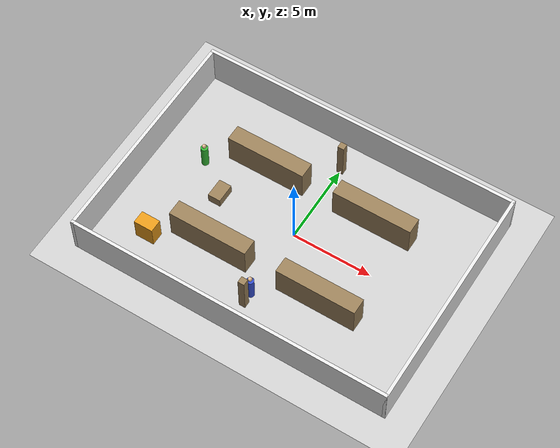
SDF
<?xml version="1.0"?>
<sdf version="1.6">
  <world name="warehouse">
    <include><uri>model://sun</uri></include>
    <include><uri>model://ground_plane</uri></include>
    <scene><ambient>0.6 0.6 0.6 1</ambient><background>0.7 0.75 0.8 1</background></scene>

    <plugin name="gazebo_ros_state" filename="libgazebo_ros_state.so">
      <ros><namespace>/gazebo</namespace></ros>
      <update_rate>50.0</update_rate>
    </plugin>

    <model name="walls">
      <static>true</static>
      <link name="link">
        <collision name="wall_px_c"><pose>10.0 0.0 1.250 0 0 0</pose><geometry><box><size>0.2 14.2 2.5</size></box></geometry></collision>
        <visual name="wall_px_v"><pose>10.0 0.0 1.250 0 0 0</pose><geometry><box><size>0.2 14.2 2.5</size></box></geometry>
          <material><ambient>0.85 0.85 0.85 1</ambient><diffuse>0.9 0.9 0.9 1</diffuse></material></visual>
        <collision name="wall_nx_c"><pose>-10.0 0.0 1.250 0 0 0</pose><geometry><box><size>0.2 14.2 2.5</size></box></geometry></collision>
        <visual name="wall_nx_v"><pose>-10.0 0.0 1.250 0 0 0</pose><geometry><box><size>0.2 14.2 2.5</size></box></geometry>
          <material><ambient>0.85 0.85 0.85 1</ambient><diffuse>0.9 0.9 0.9 1</diffuse></material></visual>
        <collision name="wall_py_c"><pose>0.0 7.0 1.250 0 0 0</pose><geometry><box><size>20.2 0.2 2.5</size></box></geometry></collision>
        <visual name="wall_py_v"><pose>0.0 7.0 1.250 0 0 0</pose><geometry><box><size>20.2 0.2 2.5</size></box></geometry>
          <material><ambient>0.85 0.85 0.85 1</ambient><diffuse>0.9 0.9 0.9 1</diffuse></material></visual>
        <collision name="wall_ny_c"><pose>0.0 -7.0 1.250 0 0 0</pose><geometry><box><size>20.2 0.2 2.5</size></box></geometry></collision>
        <visual name="wall_ny_v"><pose>0.0 -7.0 1.250 0 0 0</pose><geometry><box><size>20.2 0.2 2.5</size></box></geometry>
          <material><ambient>0.85 0.85 0.85 1</ambient><diffuse>0.9 0.9 0.9 1</diffuse></material></visual>
      </link>
    </model>
    <model name="shelf_nw">
      <static>true</static>
      <pose>-3.5 3.0 1.000 0 0 0</pose>
      <link name="link">
        <collision name="c"><geometry><box><size>5.0 1.0 2.0</size></box></geometry></collision>
        <visual name="v">
          <geometry><box><size>5.0 1.0 2.0</size></box></geometry>
          <material><ambient>0.5 0.4 0.3 1</ambient><diffuse>0.6 0.5 0.35 1</diffuse></material>
        </visual>
      </link>
    </model>
    <model name="shelf_ne">
      <static>true</static>
      <pose>3.5 3.0 1.000 0 0 0</pose>
      <link name="link">
        <collision name="c"><geometry><box><size>5.0 1.0 2.0</size></box></geometry></collision>
        <visual name="v">
          <geometry><box><size>5.0 1.0 2.0</size></box></geometry>
          <material><ambient>0.5 0.4 0.3 1</ambient><diffuse>0.6 0.5 0.35 1</diffuse></material>
        </visual>
      </link>
    </model>
    <model name="shelf_sw">
      <static>true</static>
      <pose>-3.5 -3.0 1.000 0 0 0</pose>
      <link name="link">
        <collision name="c"><geometry><box><size>5.0 1.0 2.0</size></box></geometry></collision>
        <visual name="v">
          <geometry><box><size>5.0 1.0 2.0</size></box></geometry>
          <material><ambient>0.5 0.4 0.3 1</ambient><diffuse>0.6 0.5 0.35 1</diffuse></material>
        </visual>
      </link>
    </model>
    <model name="shelf_se">
      <static>true</static>
      <pose>3.5 -3.0 1.000 0 0 0</pose>
      <link name="link">
        <collision name="c"><geometry><box><size>5.0 1.0 2.0</size></box></geometry></collision>
        <visual name="v">
          <geometry><box><size>5.0 1.0 2.0</size></box></geometry>
          <material><ambient>0.5 0.4 0.3 1</ambient><diffuse>0.6 0.5 0.35 1</diffuse></material>
        </visual>
      </link>
    </model>
    <model name="pillar_n">
      <static>true</static>
      <pose>0.0 5.2 1.250 0 0 0</pose>
      <link name="link">
        <collision name="c"><geometry><box><size>0.4 0.4 2.5</size></box></geometry></collision>
        <visual name="v">
          <geometry><box><size>0.4 0.4 2.5</size></box></geometry>
          <material><ambient>0.5 0.4 0.3 1</ambient><diffuse>0.6 0.5 0.35 1</diffuse></material>
        </visual>
      </link>
    </model>
    <model name="pillar_s">
      <static>true</static>
      <pose>0.0 -5.2 1.250 0 0 0</pose>
      <link name="link">
        <collision name="c"><geometry><box><size>0.4 0.4 2.5</size></box></geometry></collision>
        <visual name="v">
          <geometry><box><size>0.4 0.4 2.5</size></box></geometry>
          <material><ambient>0.5 0.4 0.3 1</ambient><diffuse>0.6 0.5 0.35 1</diffuse></material>
        </visual>
      </link>
    </model>
    <model name="pallet_1">
      <static>true</static>
      <pose>-5.0 0.0 0.300 0 0 0</pose>
      <link name="link">
        <collision name="c"><geometry><box><size>0.8 1.2 0.6</size></box></geometry></collision>
        <visual name="v">
          <geometry><box><size>0.8 1.2 0.6</size></box></geometry>
          <material><ambient>0.5 0.4 0.3 1</ambient><diffuse>0.6 0.5 0.35 1</diffuse></material>
        </visual>
      </link>
    </model>

    <!-- Moving objects. Positioned by perception_tools/agent_mover from
         warehouse.agents.yaml; their names are used for ground-truth labels. -->
    <model name="pedestrian_1">
      <pose>-7.0 1.5 0 0 0 0</pose>
      <link name="body">
        <gravity>false</gravity>
        <kinematic>true</kinematic>
        <collision name="torso_c"><pose>0 0 0.75 0 0 0</pose><geometry><cylinder><radius>0.22</radius><length>1.5</length></cylinder></geometry><surface><contact><collide_without_contact>true</collide_without_contact></contact></surface></collision>
        <visual name="torso_v"><pose>0 0 0.75 0 0 0</pose><geometry><cylinder><radius>0.22</radius><length>1.5</length></cylinder></geometry>
          <material><ambient>0.2 0.6 0.2 1</ambient><diffuse>0.2 0.7 0.2 1</diffuse></material></visual>
        <collision name="head_c"><pose>0 0 1.65 0 0 0</pose><geometry><sphere><radius>0.13</radius></sphere></geometry><surface><contact><collide_without_contact>true</collide_without_contact></contact></surface></collision>
        <visual name="head_v"><pose>0 0 1.65 0 0 0</pose><geometry><sphere><radius>0.13</radius></sphere></geometry>
          <material><ambient>0.9 0.75 0.6 1</ambient><diffuse>0.9 0.75 0.6 1</diffuse></material></visual>
      </link>
    </model>
    <model name="pedestrian_2">
      <pose>0.0 -4.5 0 0 0 1.5708</pose>
      <link name="body">
        <gravity>false</gravity>
        <kinematic>true</kinematic>
        <collision name="torso_c"><pose>0 0 0.75 0 0 0</pose><geometry><cylinder><radius>0.22</radius><length>1.5</length></cylinder></geometry><surface><contact><collide_without_contact>true</collide_without_contact></contact></surface></collision>
        <visual name="torso_v"><pose>0 0 0.75 0 0 0</pose><geometry><cylinder><radius>0.22</radius><length>1.5</length></cylinder></geometry>
          <material><ambient>0.2 0.3 0.7 1</ambient><diffuse>0.2 0.3 0.8 1</diffuse></material></visual>
        <collision name="head_c"><pose>0 0 1.65 0 0 0</pose><geometry><sphere><radius>0.13</radius></sphere></geometry><surface><contact><collide_without_contact>true</collide_without_contact></contact></surface></collision>
        <visual name="head_v"><pose>0 0 1.65 0 0 0</pose><geometry><sphere><radius>0.13</radius></sphere></geometry>
          <material><ambient>0.9 0.75 0.6 1</ambient><diffuse>0.9 0.75 0.6 1</diffuse></material></visual>
      </link>
    </model>
    <model name="forklift_1">
      <pose>-7.0 -4.3 0 0 0 0</pose>
      <link name="body">
        <gravity>false</gravity>
        <kinematic>true</kinematic>
        <collision name="body_c"><pose>0 0 0.7 0 0 0</pose><geometry><box><size>1.2 0.8 1.4</size></box></geometry><surface><contact><collide_without_contact>true</collide_without_contact></contact></surface></collision>
        <visual name="body_v"><pose>0 0 0.7 0 0 0</pose><geometry><box><size>1.2 0.8 1.4</size></box></geometry>
          <material><ambient>0.8 0.5 0.1 1</ambient><diffuse>0.9 0.6 0.1 1</diffuse></material></visual>
      </link>
    </model>

  </world>
</sdf>
